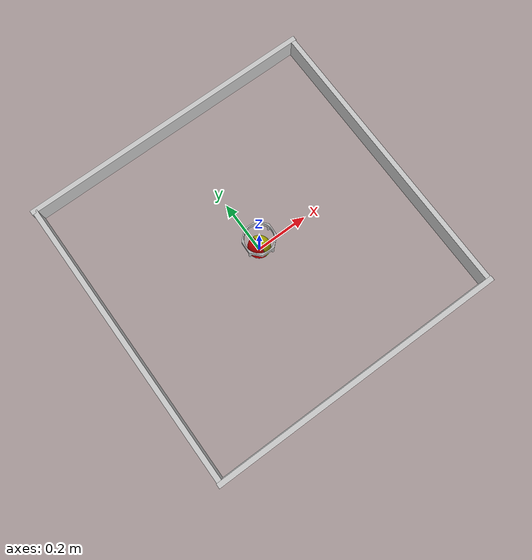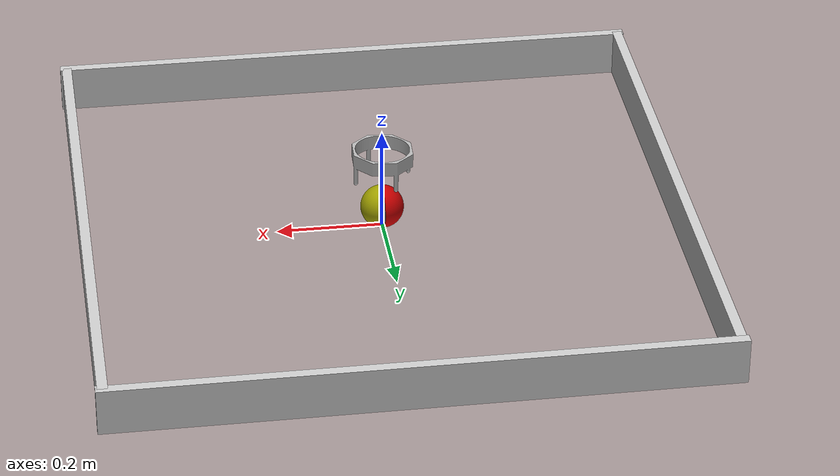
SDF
<?xml version="1.0" ?>
<sdf version="1.5">
  <world name="simulate-weazelball">
    <physics type="ode">
      <gravity>0 0 -10</gravity>
      <max_step_size>0.001</max_step_size>
      <real_time_factor>1</real_time_factor>
      <real_time_update_rate>1000</real_time_update_rate>
      <max_contacts>20</max_contacts>
      <simbody>
        <min_step_size>0.0001</min_step_size>
        <accuracy>0.001</accuracy>
        <max_transient_velocity>0.01</max_transient_velocity>
        <contact>
          <stiffness>1e8</stiffness>
          <dissipation>100</dissipation>
          <plastic_coef_restitution>0.5</plastic_coef_restitution>
          <plastic_impact_velocity>0.5</plastic_impact_velocity>
          <static_friction>100</static_friction>
          <dynamic_friction>100</dynamic_friction>
          <viscous_friction>0</viscous_friction>
          <override_impact_capture_velocity>0.001</override_impact_capture_velocity>
          <override_stiction_transition_velocity>0.001</override_stiction_transition_velocity>
        </contact>
      </simbody>
      <bullet>
        <solver>
          <type>sequential_impulse</type>
          <min_step_size>0.0001</min_step_size>
          <iters>50</iters>
          <sor>1.3</sor>
        </solver>
        <constraints>
          <cfm>0.0</cfm>
          <erp>0.2</erp>
          <contact_surface_layer>0.001</contact_surface_layer>
          <split_impulse>1</split_impulse>
          <split_impulse_penetration_threshold>-0.01</split_impulse_penetration_threshold>
        </constraints>
      </bullet>
      <ode>
        <solver>
          <type>quick</type>
          <min_step_size>0.0001</min_step_size>
          <iters>500</iters>
          <sor>1.0</sor>
        </solver>
        <constraints>
          <cfm>0.0</cfm>
          <erp>0.2</erp>
          <contact_max_correcting_vel>100</contact_max_correcting_vel>
          <contact_surface_layer>1e-8</contact_surface_layer>
        </constraints>
      </ode>
    </physics>
    <include>
      <uri>model://weazelsun</uri>
    </include>
    <include>
      <uri>model://mount</uri>
      <pose>0 0 0.1 0 0 0</pose>
    </include>
    <include>
      <uri>model://weazelball</uri>
      <pose>0 0 0.041 0 -1.5708 -1.5708</pose>
      <plugin name='simulation-controller' filename='libsimulation-controller.so'>
      </plugin>
    </include>
    <include>
      <uri>model://weazelenclosure</uri>
      <pose>0 0 -0.009525 0 0 0</pose>
    </include>
    <gui>
      <camera name='user_camera'>
        <pose>1.63355 0 0.513402 0 0.319643 -3.13899</pose>
        <view_controller>orbit</view_controller>
      </camera>
    </gui>
  </world>
</sdf>

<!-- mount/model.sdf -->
<sdf version="1.6">
  <model name="mount">
    <link name="mountlink">
      <collision name="coll">
        <pose>0 0 0 0 0 0</pose>
        <geometry>
	      <mesh>
              <uri>model://mount/meshes/mount_collision.dae</uri>
	      </mesh>
        </geometry>
      </collision>
      <inertial>
        <pose>0 0 0 0 0 0</pose>
        <inertia>
          <ixx>0.00055873</ixx>
          <ixy>0.0000</ixy>
          <ixz>0.00000</ixz>
          <iyy>0.00055873</iyy>
          <iyz>0.00000/iyz></iyz>
          <izz>0.0010789</izz>
        </inertia>
        <mass>0.028</mass>
      </inertial>
      <visual name="mountvisual">
        <pose>0 0 0 0 0 0</pose>
        <geometry>
          <mesh>
            <uri>model://mount/meshes/mount.dae</uri>
          </mesh>
        </geometry>
      </visual>
	  <plugin name="bumpSensor" filename="libbumpSensor.so"> </plugin>
	  <sensor name='contactSensor' type='contact'>
	    <contact>
		  <collision>coll</collision>
		</contact>
	  </sensor>
    </link>
  </model>
</sdf>

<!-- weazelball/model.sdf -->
<sdf version="1.4">
  <model name="weazelball">
    <link name="shell">
      <self_collide>false</self_collide>
      <inertial>
        <pose>0 0 0 0 0 0</pose>
        <inertia>
          <ixx>0.0000497901</ixx>
          <ixy>-0.0000000437</ixy>
          <ixz>0.0000000021</ixz>
          <iyy>0.0000531742</iyy>
          <iyz>0.0000000036</iyz>
          <izz>0.0000498265</izz>
        </inertia>
        <mass>0.0489</mass>
      </inertial>
      <visual name="shell_geom_visual1">
        <pose>0 0 0 0 0 0</pose>
        <geometry>
          <mesh>
            <uri>model://weazelball/meshes/visual/wb-shell-fixedhemi.dae</uri>
          </mesh>
        </geometry>
      </visual>
      <visual name="shell_geom_visual2">
        <pose>0 0 0 0 0 0</pose>
        <geometry>
          <mesh>
            <uri>model://weazelball/meshes/visual/wb-shell-freehemi.dae</uri>
          </mesh>
        </geometry>
      </visual>
      <visual name="shell_geom_visual3">
        <pose>0 0 0 0 0 0</pose>
        <geometry>
          <mesh>
            <uri>model://weazelball/meshes/visual/wb-shell-oring.dae</uri>
          </mesh>
        </geometry>
      </visual>
      <collision name="base_geom_collision">
        <pose>0 0 0 0 0 0</pose>
        <geometry>
          <sphere>
            <radius>0.041</radius>
          </sphere>
        </geometry>
        <surface>
          <friction>
            <ode>
              <mu>0.5</mu>
              <mu2>0.5</mu2>
              <fdir1>0 0 0</fdir1>
              <slip1>0.0</slip1>
              <slip2>0.0</slip2>
            </ode>
            <bullet>
              <friction>1</friction>
              <friction2>1</friction2>
              <fdir1>0 0 0</fdir1>
              <rolling_friction>1</rolling_friction>
            </bullet>
          </friction>
        </surface>
      </collision>
    </link>
    <link name="motor">
      <self_collide>false</self_collide>
      <inertial>
        <pose>-0.01656 0.00141 -0.00170 0 0 0</pose>
<!-- Taken at center of mass and aligned with origin -->
        <inertia>
          <ixx>0.00002191279</ixx>
          <ixy>0.00000232259</ixy>
          <ixz>-0.00000120945</ixz>
          <iyy>0.00002143758</iyy>
          <iyz>0.00000043107</iyz>
          <izz>0.00002578811</izz>
        </inertia>
        <mass>0.0864</mass>
      </inertial>
      <visual name="motor_geom_visual1">
        <pose>0 0 0 0 0 0</pose>
        <geometry>
          <mesh>
            <uri>model://weazelball/meshes/visual/wb-bob-housing.dae</uri>
          </mesh>
        </geometry>
      </visual>
      <visual name="motor_geom_visual2">
        <pose>0 0 0 0 0 0</pose>
        <geometry>
          <mesh>
            <uri>model://weazelball/meshes/visual/wb-bob-cw.dae</uri>
          </mesh>
        </geometry>
      </visual>
    </link>

    <joint name="motor_actuator" type="revolute">
      <parent>shell</parent>
      <child>motor</child>
      <axis>
        <dynamics>
          <damping>0.0</damping>
          <friction>0.0</friction>
        </dynamics>
        <xyz>0 1 0</xyz>
      </axis>
    </joint>

    <!-- Fixed base -->

  </model>
</sdf>

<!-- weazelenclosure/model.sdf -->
<sdf version="1.4">
  <model name="weazelenclosure">
    <static>true</static>
    <link name="rail01">
      <pose>0.56355 0 0.03175 0 0 0</pose>
      <self_collide>false</self_collide>
      <visual name="rail01_geom_visual">
        <geometry>
          <box>
            <size>0.01905 1.12713 0.0889</size>
          </box>
        </geometry>
        <material>
          <lighting>true</lighting>
          <ambient>0.8 0.8 0.8 1</ambient>
          <diffuse>0.8 0.8 0.8 1</diffuse>
          <specular>0 0 0 1</specular>
          <emissive>0 0 0 1</emissive>
        </material>
      </visual>
      <collision name="rail01_geom_collision">
        <geometry>
          <box>
            <size>0.01905 1.12713 0.0889</size>
          </box>
        </geometry>
        <surface>
          <friction>
            <ode>
              <mu>0.5</mu>
              <mu2>0.5</mu2>
              <fdir1>0 0 0</fdir1>
              <slip1>0.0</slip1>
              <slip2>0.0</slip2>
            </ode>
          </friction>
        </surface>
      </collision>
    </link>
    <link name="rail02">
      <pose>0 0.56356 0.03175 0 0 1.57</pose>
      <self_collide>false</self_collide>
      <visual name="rail02_geom_visual">
        <geometry>
          <box>
            <size> 0.01905 1.1525 0.0889</size>
          </box>
        </geometry>
        <material>
          <lighting>true</lighting>
          <ambient>0.8 0.8 0.8 1</ambient>
          <diffuse>0.8 0.8 0.8 1</diffuse>
          <specular>0 0 0 1</specular>
          <emissive>0 0 0 1</emissive>
        </material>
      </visual>
      <collision name="rail02_geom_collision">
        <geometry>
          <box>
            <size> 0.01905 1.1525 0.0889</size>
          </box>
        </geometry>
        <surface>
          <friction>
            <ode>
              <mu>0.5</mu>
              <mu2>0.5</mu2>
              <fdir1>0 0 0</fdir1>
              <slip1>0.0</slip1>
              <slip2>0.0</slip2>
            </ode>
          </friction>
        </surface>
      </collision>
    </link>
    <link name="rail03">
      <pose>-0.56355 0 0.03175 0 0 3.14</pose>
      <self_collide>false</self_collide>
      <visual name="rail03_geom_visual">
        <geometry>
          <box>
            <size>0.01905 1.12713 0.0889</size>
          </box>
        </geometry>
        <material>
          <lighting>true</lighting>
          <ambient>0.8 0.8 0.8 1</ambient>
          <diffuse>0.8 0.8 0.8 1</diffuse>
          <specular>0 0 0 1</specular>
          <emissive>0 0 0 1</emissive>
        </material>
      </visual>
      <collision name="rail03_geom_collision">
        <geometry>
          <box>
            <size>0.01905 1.12713 0.0889</size>
          </box>
        </geometry>
        <surface>
          <friction>
            <ode>
              <mu>0.5</mu>
              <mu2>0.5</mu2>
              <fdir1>0 0 0</fdir1>
              <slip1>0.0</slip1>
              <slip2>0.0</slip2>
            </ode>
          </friction>
        </surface>
      </collision>
    </link>
    <link name="rail04">
      <pose>0 -0.56356 0.03175 0 0 4.71</pose>
      <self_collide>false</self_collide>
      <visual name="rail04_geom_visual">
        <geometry>
          <box>
            <size> 0.01905 1.1525 0.0889</size>
          </box>
        </geometry>
        <material>
          <lighting>true</lighting>
          <ambient>0.8 0.8 0.8 1</ambient>
          <diffuse>0.8 0.8 0.8 1</diffuse>
          <specular>0 0 0 1</specular>
          <emissive>0 0 0 1</emissive>
        </material>
      </visual>
      <collision name="rail04_geom_collision">
        <geometry>
          <box>
            <size> 0.01905 1.1525 0.0889</size>
          </box>
        </geometry>
        <surface>
          <friction>
            <ode>
              <mu>0.5</mu>
              <mu2>0.5</mu2>
              <fdir1>0 0 0</fdir1>
              <slip1>0.0</slip1>
              <slip2>0.0</slip2>
            </ode>
          </friction>
        </surface>
      </collision>
    </link>
  </model>
</sdf>
